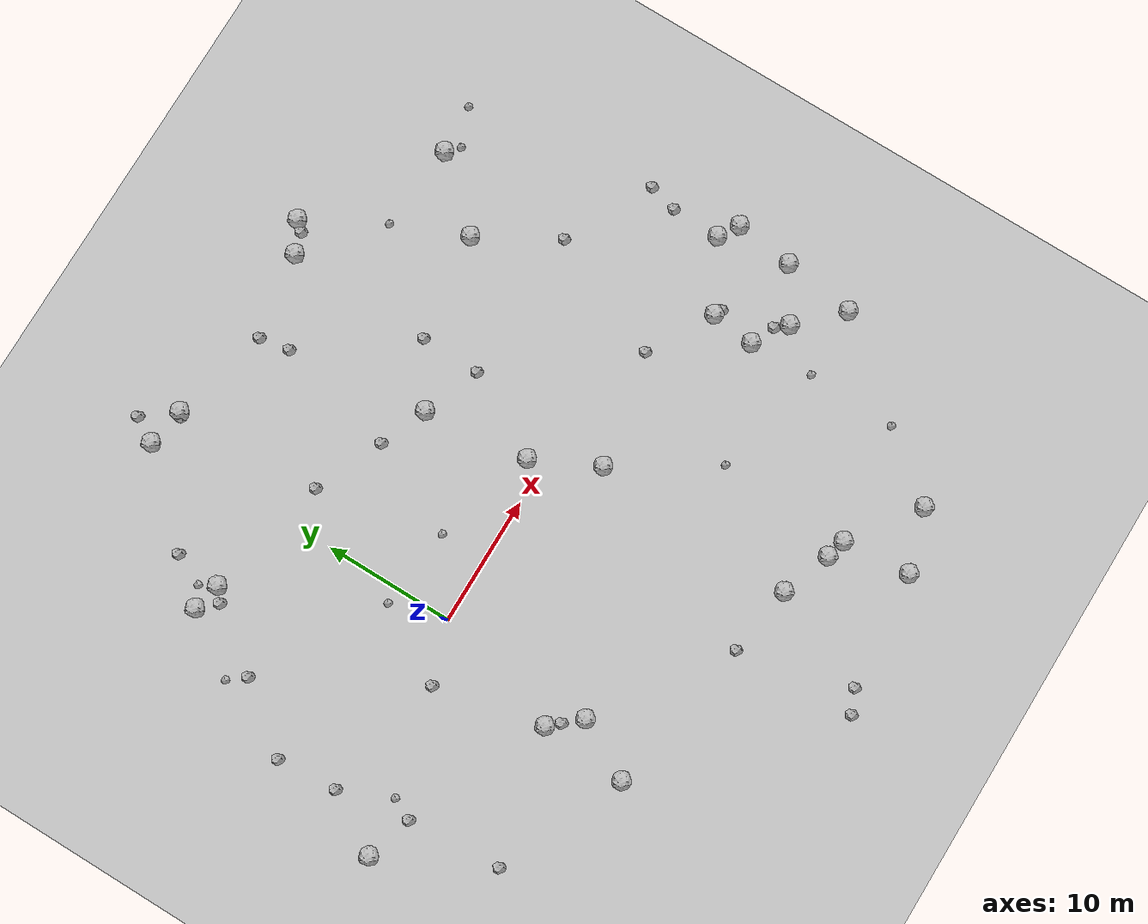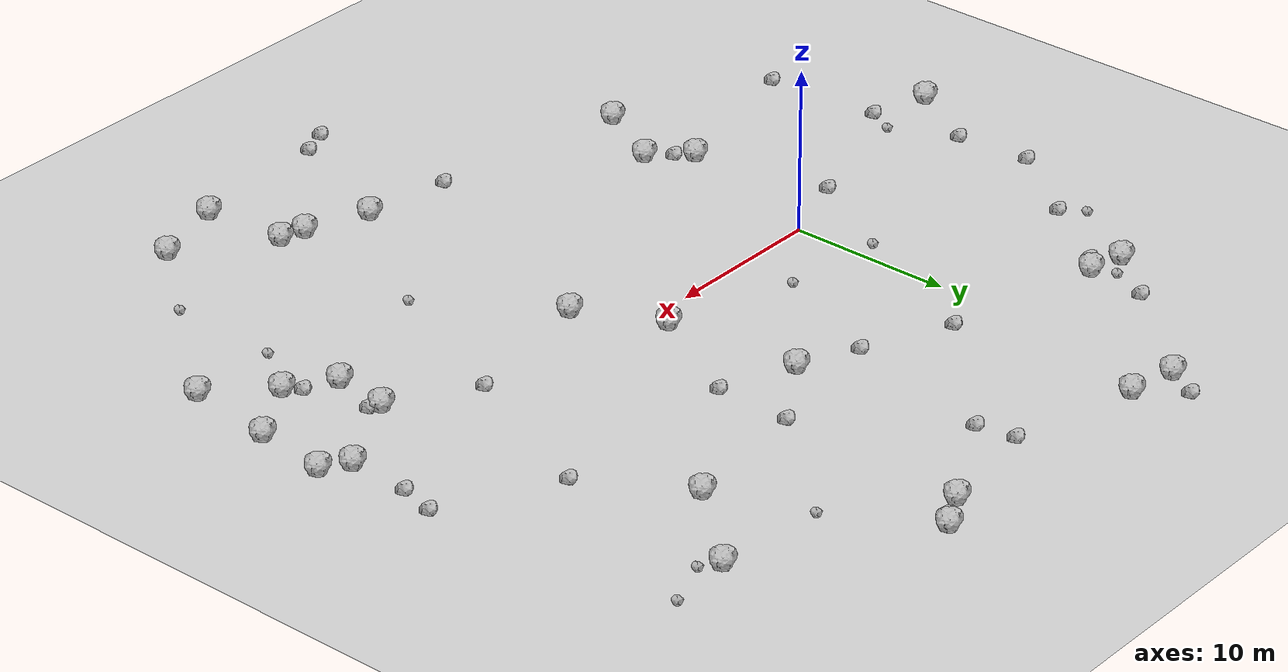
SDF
<sdf version="1.6">
 <world name="default">
  <include><uri>model://custom_ground</uri></include>
  <include><uri>model://sun</uri></include>
  <model name="rock1_0_0">
   <include><uri>model://rock1</uri><pose>28.89240392083375 -8.251447731566753 0.5 0 0 0</pose></include>
  </model>
  <model name="rock1_0_1">
   <include><uri>model://rock1</uri><pose>18.333153108932514 -20.960449020984612 0.5 0 0 0</pose></include>
  </model>
  <model name="rock1_0_2">
   <include><uri>model://rock1</uri><pose>17.022024644259425 23.800266063380334 0.5 0 0 0</pose></include>
  </model>
  <model name="rock1_0_3">
   <include><uri>model://rock1</uri><pose>29.38433361707314 18.501102311695064 0.5 0 0 0</pose></include>
  </model>
  <model name="rock1_0_4">
   <include><uri>model://rock1</uri><pose>19.326604578691985 25.033752919439166 0.5 0 0 0</pose></include>
  </model>
  <model name="rock1_0_5">
   <include><uri>model://rock1</uri><pose>-3.1407914971887223 -16.56047609525828 0.5 0 0 0</pose></include>
  </model>
  <model name="rock1_0_6">
   <include><uri>model://rock1</uri><pose>19.86674102789823 -21.36015892106568 0.5 0 0 0</pose></include>
  </model>
  <model name="rock1_0_7">
   <include><uri>model://rock1</uri><pose>-2.700845417194831 -9.88931580267041 0.5 0 0 0</pose></include>
  </model>
  <model name="rock1_0_8">
   <include><uri>model://rock1</uri><pose>-6.497884018358031 15.437609809167583 0.5 0 0 0</pose></include>
  </model>
  <model name="rock1_0_9">
   <include><uri>model://rock1</uri><pose>34.67840982071247 -13.114436952716463 0.5 0 0 0</pose></include>
  </model>
  <model name="rock1_0_10">
   <include><uri>model://rock1</uri><pose>15.447593478588331 -3.743261380759858 0.5 0 0 0</pose></include>
  </model>
  <model name="rock1_0_11">
   <include><uri>model://rock1</uri><pose>-0.28258649102653877 25.167961833343142 0.5 0 0 0</pose></include>
  </model>
  <model name="rock1_0_12">
   <include><uri>model://rock1</uri><pose>34.45447410510062 -2.0537355409042988 0.5 0 0 0</pose></include>
  </model>
  <model name="rock1_0_13">
   <include><uri>model://rock1</uri><pose>20.30266414823428 -26.571973026416323 0.5 0 0 0</pose></include>
  </model>
  <model name="rock1_0_14">
   <include><uri>model://rock1</uri><pose>-16.97392508465335 -4.047671610643334 0.5 0 0 0</pose></include>
  </model>
  <model name="rock1_0_15">
   <include><uri>model://rock1</uri><pose>14.491756993398496 -19.566163134854406 0.5 0 0 0</pose></include>
  </model>
  <model name="rock1_0_16">
   <include><uri>model://rock1</uri><pose>2.7217477200584703 24.63396864026503 0.5 0 0 0</pose></include>
  </model>
  <model name="rock1_0_17">
   <include><uri>model://rock1</uri><pose>12.129768885750295 9.42615907365986 0.5 0 0 0</pose></include>
  </model>
  <model name="rock1_0_18">
   <include><uri>model://rock1</uri><pose>24.926836774869983 13.4840445658933 0.5 0 0 0</pose></include>
  </model>
  <model name="rock1_0_19">
   <include><uri>model://rock1</uri><pose>-8.696860265631896 15.921592069049773 0.5 0 0 0</pose></include>
  </model>
  <model name="rock1_0_20">
   <include><uri>model://rock1</uri><pose>36.014163062972536 -3.0344764649587006 0.5 0 0 0</pose></include>
  </model>
  <model name="rock1_0_21">
   <include><uri>model://rock1</uri><pose>-0.7539746536106193 -12.106559816765763 0.5 0 0 0</pose></include>
  </model>
  <model name="rock1_0_22">
   <include><uri>model://rock1</uri><pose>13.017379124603337 1.2558204348869424 0.5 0 0 0</pose></include>
  </model>
  <model name="rock1_0_23">
   <include><uri>model://rock1</uri><pose>25.060243162056018 -25.09816957348127 0.5 0 0 0</pose></include>
  </model>
  <model name="rock1_0_24">
   <include><uri>model://rock1</uri><pose>29.295695108332524 -4.860907637939285 0.5 0 0 0</pose></include>
  </model>
  <model name="rock1_0_25">
   <include><uri>model://rock1</uri><pose>35.4312558306436 -7.5737950770414635 0.5 0 0 0</pose></include>
  </model>
  <model name="rock1_0_26">
   <include><uri>model://rock1</uri><pose>31.52013118284993 -9.97571056577885 0.5 0 0 0</pose></include>
  </model>
  <model name="rock2_0_0">
   <include><uri>model://rock2</uri><pose>8.409959702267084 10.918069295889346 0.3 0 0 0</pose></include>
  </model>
  <model name="rock2_0_1">
   <include><uri>model://rock2</uri><pose>35.14969078021123 3.975860039475613 0.3 0 0 0</pose></include>
  </model>
  <model name="rock2_0_2">
   <include><uri>model://rock2</uri><pose>-1.960616778971513 -10.810829314552226 0.3 0 0 0</pose></include>
  </model>
  <model name="rock2_0_3">
   <include><uri>model://rock2</uri><pose>28.351196417164523 7.47921141878728 0.3 0 0 0</pose></include>
  </model>
  <model name="rock2_0_4">
   <include><uri>model://rock2</uri><pose>-6.102040384242283 19.111430416964126 0.3 0 0 0</pose></include>
  </model>
  <model name="rock2_0_5">
   <include><uri>model://rock2</uri><pose>2.3744347944534 24.43150588320926 0.3 0 0 0</pose></include>
  </model>
  <model name="rock2_0_6">
   <include><uri>model://rock2</uri><pose>-4.542118787471484 -1.5167994713348385 0.3 0 0 0</pose></include>
  </model>
  <model name="rock2_0_7">
   <include><uri>model://rock2</uri><pose>9.40862786658062 -28.19272667543725 0.3 0 0 0</pose></include>
  </model>
  <model name="rock2_0_8">
   <include><uri>model://rock2</uri><pose>-10.920725779491994 10.058387045284519 0.3 0 0 0</pose></include>
  </model>
  <model name="rock2_0_9">
   <include><uri>model://rock2</uri><pose>11.198918185272216 -27.41175250977727 0.3 0 0 0</pose></include>
  </model>
  <model name="rock2_0_10">
   <include><uri>model://rock2</uri><pose>10.327713301319534 22.691897663526248 0.3 0 0 0</pose></include>
  </model>
  <model name="rock2_0_11">
   <include><uri>model://rock2</uri><pose>30.74784058399571 -9.09734260081217 0.3 0 0 0</pose></include>
  </model>
  <model name="rock2_0_12">
   <include><uri>model://rock2</uri><pose>29.867684540975304 -5.171842518455531 0.3 0 0 0</pose></include>
  </model>
  <model name="rock2_0_13">
   <include><uri>model://rock2</uri><pose>-14.360636923557397 0.4701424707148121 0.3 0 0 0</pose></include>
  </model>
  <model name="rock2_0_14">
   <include><uri>model://rock2</uri><pose>-13.45409045693451 -5.114570419450445 0.3 0 0 0</pose></include>
  </model>
  <model name="rock2_0_15">
   <include><uri>model://rock2</uri><pose>9.045677435270278 -18.793463533521688 0.3 0 0 0</pose></include>
  </model>
  <model name="rock2_0_16">
   <include><uri>model://rock2</uri><pose>-12.914720982900556 -12.33305118149245 0.3 0 0 0</pose></include>
  </model>
  <model name="rock2_0_17">
   <include><uri>model://rock2</uri><pose>3.1084470378243303 13.224786001444528 0.3 0 0 0</pose></include>
  </model>
  <model name="rock2_0_18">
   <include><uri>model://rock2</uri><pose>24.261189980939704 -2.002891777150392 0.3 0 0 0</pose></include>
  </model>
  <model name="rock2_0_19">
   <include><uri>model://rock2</uri><pose>16.515281659768 7.740035690139223 0.3 0 0 0</pose></include>
  </model>
  <model name="rock2_0_20">
   <include><uri>model://rock2</uri><pose>34.54586810599174 1.7447299285427427 0.3 0 0 0</pose></include>
  </model>
  <model name="rock2_0_21">
   <include><uri>model://rock2</uri><pose>-7.545576729439398 14.651509908258376 0.3 0 0 0</pose></include>
  </model>
  <model name="rock2_0_22">
   <include><uri>model://rock2</uri><pose>0.779039584692029 27.12819401540351 0.3 0 0 0</pose></include>
  </model>
  <model name="rock2_0_23">
   <include><uri>model://rock2</uri><pose>16.609082960867347 12.395080816714554 0.3 0 0 0</pose></include>
  </model>
  <model name="rock2_0_24">
   <include><uri>model://rock2</uri><pose>10.720433107522627 20.35250552904194 0.3 0 0 0</pose></include>
  </model>
  <model name="rock2_0_25">
   <include><uri>model://rock2</uri><pose>-14.707978662268781 5.105948463225779 0.3 0 0 0</pose></include>
  </model>
  <model name="rock2_0_26">
   <include><uri>model://rock2</uri><pose>18.624748010595646 24.349917835232553 0.3 0 0 0</pose></include>
  </model>
  <model name="rock3_0_0">
   <include><uri>model://rock3</uri><pose>22.584412775605216 19.09904786732416 0.2 0 0 0</pose></include>
  </model>
  <model name="rock3_0_1">
   <include><uri>model://rock3</uri><pose>-11.964555022475984 11.314814774267596 0.2 0 0 0</pose></include>
  </model>
  <model name="rock3_0_2">
   <include><uri>model://rock3</uri><pose>20.150697175165867 -11.311699165311605 0.2 0 0 0</pose></include>
  </model>
  <model name="rock3_0_3">
   <include><uri>model://rock3</uri><pose>33.25648947279714 18.815399294576217 0.2 0 0 0</pose></include>
  </model>
  <model name="rock3_0_4">
   <include><uri>model://rock3</uri><pose>-1.2023072090230542 4.285320998275424 0.2 0 0 0</pose></include>
  </model>
  <model name="rock3_0_5">
   <include><uri>model://rock3</uri><pose>28.95426515427488 -20.167820984281967 0.2 0 0 0</pose></include>
  </model>
  <model name="rock3_0_6">
   <include><uri>model://rock3</uri><pose>30.303013770773305 17.652845378268438 0.2 0 0 0</pose></include>
  </model>
  <model name="rock3_0_7">
   <include><uri>model://rock3</uri><pose>5.086083339752555 3.595791327668721 0.2 0 0 0</pose></include>
  </model>
  <model name="rock3_0_8">
   <include><uri>model://rock3</uri><pose>29.15838537394974 -13.259127037681047 0.2 0 0 0</pose></include>
  </model>
  <model name="rock3_0_9">
   <include><uri>model://rock3</uri><pose>-7.258523308717663 16.68728238266823 0.2 0 0 0</pose></include>
  </model>
  <model name="rock3_0_10">
   <include><uri>model://rock3</uri><pose>-12.668555007447814 -3.5240330340313157 0.2 0 0 0</pose></include>
  </model>
 </world>
</sdf>
